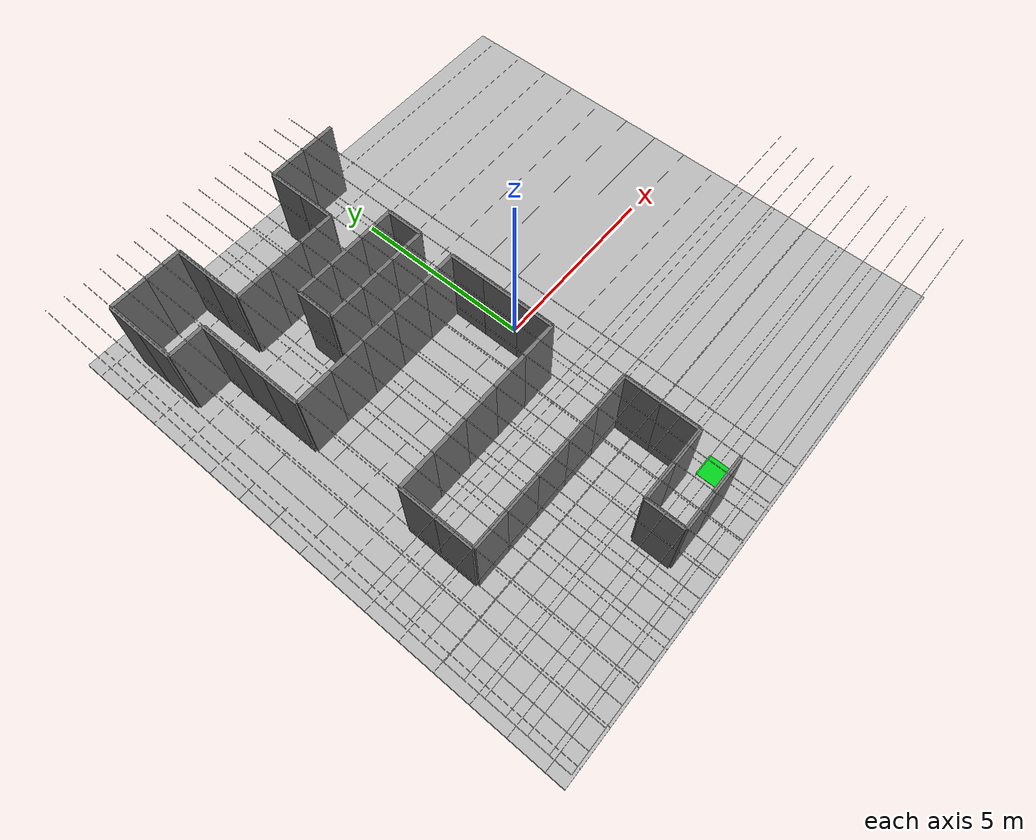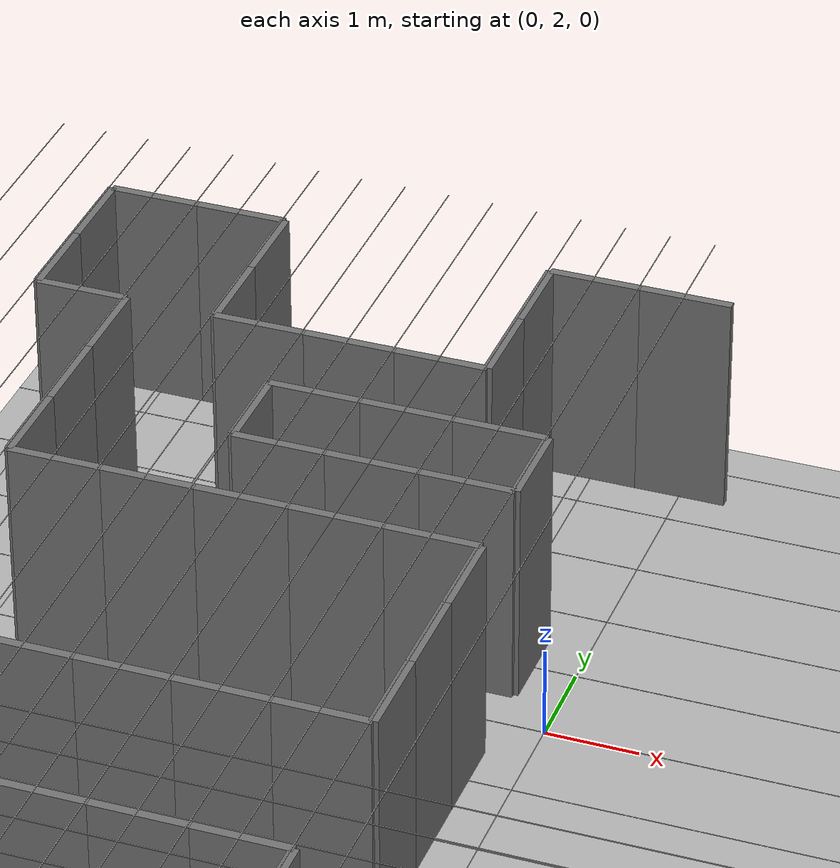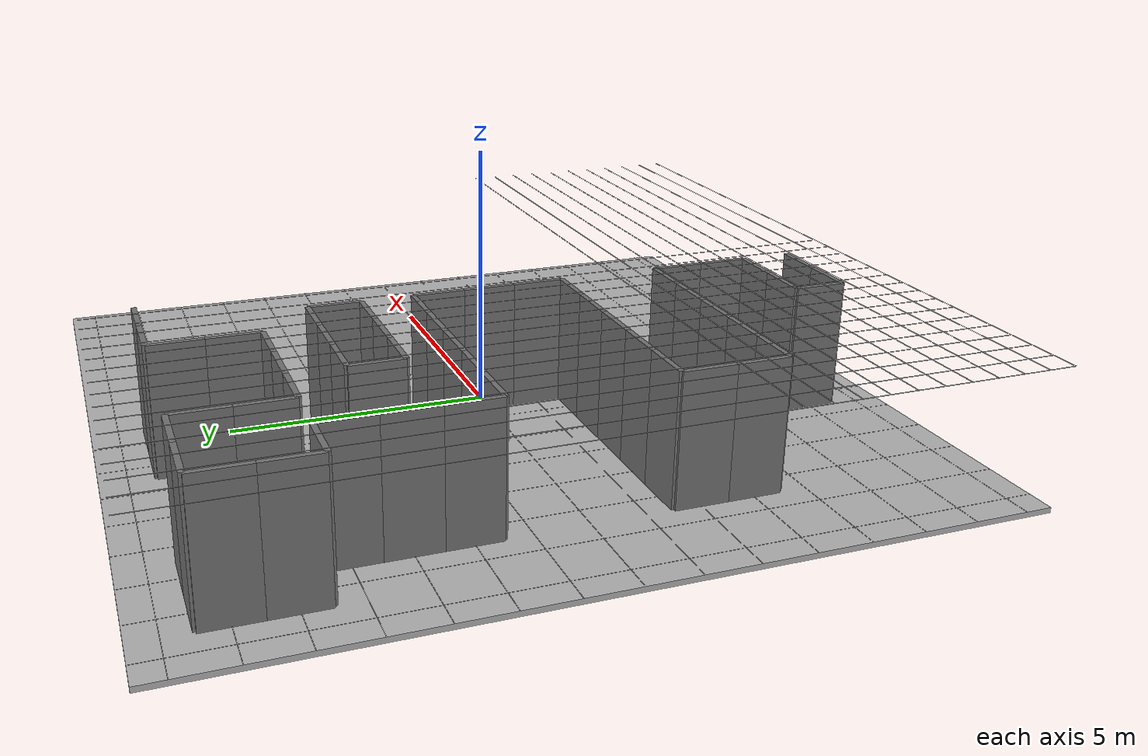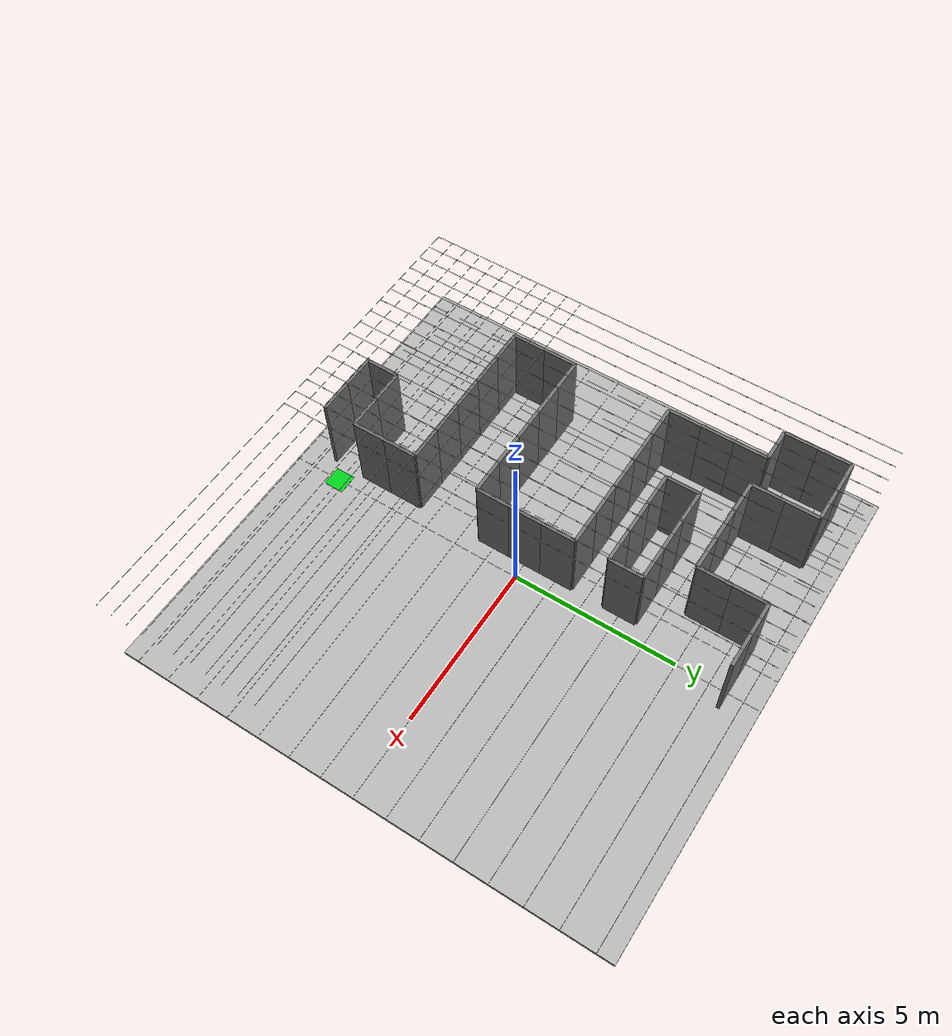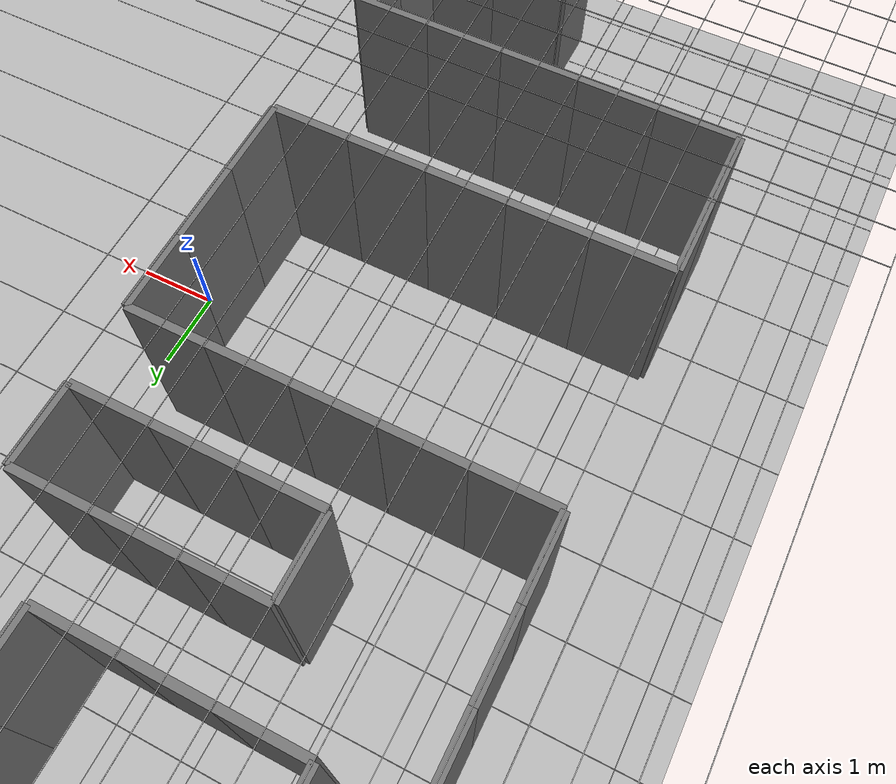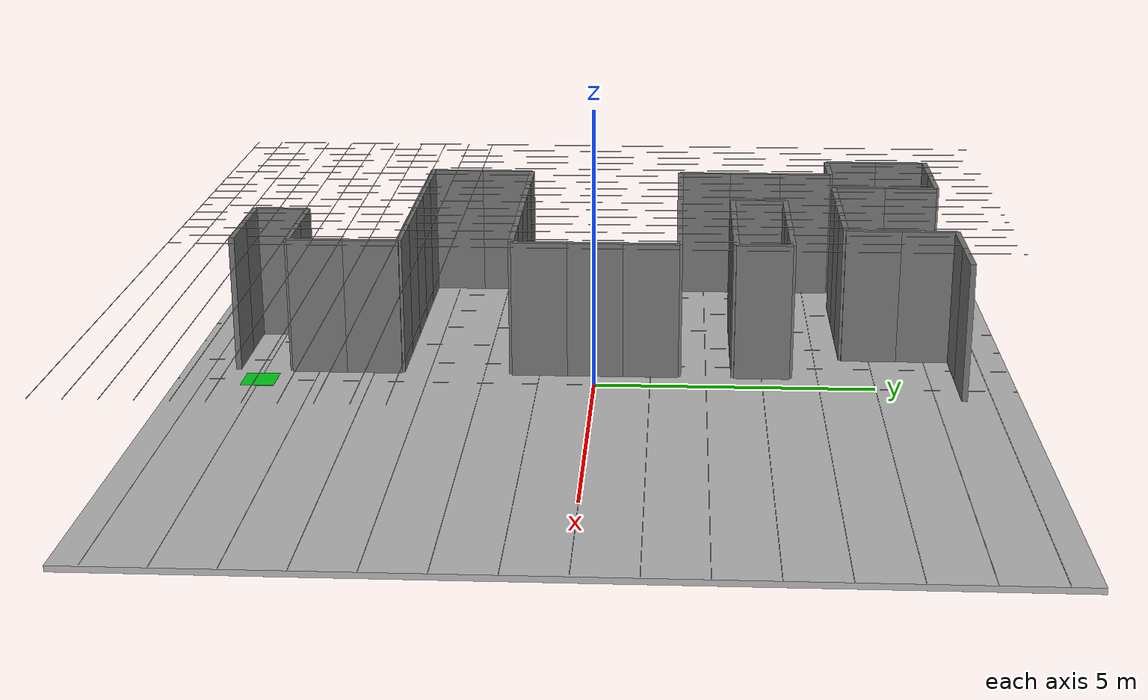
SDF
<sdf version="1.9">
 <world name="nidar_airmouse_building">
  <model name="floor">
   <static>true</static>
   <pose>0 0 -0.05 0 0 0</pose>
   <link name="link">
    <collision name="collision"><geometry><box><size>15 15 0.10</size></box></geometry></collision>
    <visual name="visual">
     <geometry><box><size>15 15 0.10</size></box></geometry>
     <material><ambient>0.65 0.65 0.65 1</ambient><diffuse>0.70 0.70 0.70 1</diffuse></material>
    </visual>
   </link>
  </model>
  <model name="grid_x_0">
   <static>true</static>
   <pose>-7 0 0.006 0 0 0</pose>
   <link name="link">
    <visual name="visual">
     <geometry><box><size>0.008 15 0.002</size></box></geometry>
     <material><ambient>0.25 0.25 0.25 0.35</ambient></material>
    </visual>
   </link>
  </model>
  <model name="grid_x_1">
   <static>true</static>
   <pose>-6 0 0.006 0 0 0</pose>
   <link name="link">
    <visual name="visual">
     <geometry><box><size>0.008 15 0.002</size></box></geometry>
     <material><ambient>0.25 0.25 0.25 0.35</ambient></material>
    </visual>
   </link>
  </model>
  <model name="grid_x_2">
   <static>true</static>
   <pose>-5 0 0.006 0 0 0</pose>
   <link name="link">
    <visual name="visual">
     <geometry><box><size>0.008 15 0.002</size></box></geometry>
     <material><ambient>0.25 0.25 0.25 0.35</ambient></material>
    </visual>
   </link>
  </model>
  <model name="grid_x_3">
   <static>true</static>
   <pose>-4 0 0.006 0 0 0</pose>
   <link name="link">
    <visual name="visual">
     <geometry><box><size>0.008 15 0.002</size></box></geometry>
     <material><ambient>0.25 0.25 0.25 0.35</ambient></material>
    </visual>
   </link>
  </model>
  <model name="grid_x_4">
   <static>true</static>
   <pose>-3 0 0.006 0 0 0</pose>
   <link name="link">
    <visual name="visual">
     <geometry><box><size>0.008 15 0.002</size></box></geometry>
     <material><ambient>0.25 0.25 0.25 0.35</ambient></material>
    </visual>
   </link>
  </model>
  <model name="grid_x_5">
   <static>true</static>
   <pose>-2 0 0.006 0 0 0</pose>
   <link name="link">
    <visual name="visual">
     <geometry><box><size>0.008 15 0.002</size></box></geometry>
     <material><ambient>0.25 0.25 0.25 0.35</ambient></material>
    </visual>
   </link>
  </model>
  <model name="grid_x_6">
   <static>true</static>
   <pose>-1 0 0.006 0 0 0</pose>
   <link name="link">
    <visual name="visual">
     <geometry><box><size>0.008 15 0.002</size></box></geometry>
     <material><ambient>0.25 0.25 0.25 0.35</ambient></material>
    </visual>
   </link>
  </model>
  <model name="grid_x_7">
   <static>true</static>
   <pose>0 0 0.006 0 0 0</pose>
   <link name="link">
    <visual name="visual">
     <geometry><box><size>0.008 15 0.002</size></box></geometry>
     <material><ambient>0.25 0.25 0.25 0.35</ambient></material>
    </visual>
   </link>
  </model>
  <model name="grid_y_15">
   <static>true</static>
   <pose>0 -7 0.007 0 0 0</pose>
   <link name="link">
    <visual name="visual">
     <geometry><box><size>15 0.008 0.002</size></box></geometry>
     <material><ambient>0.25 0.25 0.25 0.35</ambient></material>
    </visual>
   </link>
  </model>
  <model name="grid_y_16">
   <static>true</static>
   <pose>0 -6 0.007 0 0 0</pose>
   <link name="link">
    <visual name="visual">
     <geometry><box><size>15 0.008 0.002</size></box></geometry>
     <material><ambient>0.25 0.25 0.25 0.35</ambient></material>
    </visual>
   </link>
  </model>
  <model name="grid_y_17">
   <static>true</static>
   <pose>0 -5 0.007 0 0 0</pose>
   <link name="link">
    <visual name="visual">
     <geometry><box><size>15 0.008 0.002</size></box></geometry>
     <material><ambient>0.25 0.25 0.25 0.35</ambient></material>
    </visual>
   </link>
  </model>
  <model name="grid_y_18">
   <static>true</static>
   <pose>0 -4 0.007 0 0 0</pose>
   <link name="link">
    <visual name="visual">
     <geometry><box><size>15 0.008 0.002</size></box></geometry>
     <material><ambient>0.25 0.25 0.25 0.35</ambient></material>
    </visual>
   </link>
  </model>
  <model name="grid_y_19">
   <static>true</static>
   <pose>0 -3 0.007 0 0 0</pose>
   <link name="link">
    <visual name="visual">
     <geometry><box><size>15 0.008 0.002</size></box></geometry>
     <material><ambient>0.25 0.25 0.25 0.35</ambient></material>
    </visual>
   </link>
  </model>
  <model name="grid_y_20">
   <static>true</static>
   <pose>0 -2 0.007 0 0 0</pose>
   <link name="link">
    <visual name="visual">
     <geometry><box><size>15 0.008 0.002</size></box></geometry>
     <material><ambient>0.25 0.25 0.25 0.35</ambient></material>
    </visual>
   </link>
  </model>
  <model name="grid_y_21">
   <static>true</static>
   <pose>0 -1 0.007 0 0 0</pose>
   <link name="link">
    <visual name="visual">
     <geometry><box><size>15 0.008 0.002</size></box></geometry>
     <material><ambient>0.25 0.25 0.25 0.35</ambient></material>
    </visual>
   </link>
  </model>
  <model name="grid_y_22">
   <static>true</static>
   <pose>0 0 0.007 0 0 0</pose>
   <link name="link">
    <visual name="visual">
     <geometry><box><size>15 0.008 0.002</size></box></geometry>
     <material><ambient>0.25 0.25 0.25 0.35</ambient></material>
    </visual>
   </link>
  </model>
  <model name="grid_y_23">
   <static>true</static>
   <pose>0 1 0.007 0 0 0</pose>
   <link name="link">
    <visual name="visual">
     <geometry><box><size>15 0.008 0.002</size></box></geometry>
     <material><ambient>0.25 0.25 0.25 0.35</ambient></material>
    </visual>
   </link>
  </model>
  <model name="grid_y_24">
   <static>true</static>
   <pose>0 2 0.007 0 0 0</pose>
   <link name="link">
    <visual name="visual">
     <geometry><box><size>15 0.008 0.002</size></box></geometry>
     <material><ambient>0.25 0.25 0.25 0.35</ambient></material>
    </visual>
   </link>
  </model>
  <model name="grid_y_25">
   <static>true</static>
   <pose>0 3 0.007 0 0 0</pose>
   <link name="link">
    <visual name="visual">
     <geometry><box><size>15 0.008 0.002</size></box></geometry>
     <material><ambient>0.25 0.25 0.25 0.35</ambient></material>
    </visual>
   </link>
  </model>
  <model name="grid_y_26">
   <static>true</static>
   <pose>0 4 0.007 0 0 0</pose>
   <link name="link">
    <visual name="visual">
     <geometry><box><size>15 0.008 0.002</size></box></geometry>
     <material><ambient>0.25 0.25 0.25 0.35</ambient></material>
    </visual>
   </link>
  </model>
  <model name="grid_y_27">
   <static>true</static>
   <pose>0 5 0.007 0 0 0</pose>
   <link name="link">
    <visual name="visual">
     <geometry><box><size>15 0.008 0.002</size></box></geometry>
     <material><ambient>0.25 0.25 0.25 0.35</ambient></material>
    </visual>
   </link>
  </model>
  <model name="grid_y_28">
   <static>true</static>
   <pose>0 6 0.007 0 0 0</pose>
   <link name="link">
    <visual name="visual">
     <geometry><box><size>15 0.008 0.002</size></box></geometry>
     <material><ambient>0.25 0.25 0.25 0.35</ambient></material>
    </visual>
   </link>
  </model>
  <model name="grid_y_29">
   <static>true</static>
   <pose>0 7 0.007 0 0 0</pose>
   <link name="link">
    <visual name="visual">
     <geometry><box><size>15 0.008 0.002</size></box></geometry>
     <material><ambient>0.25 0.25 0.25 0.35</ambient></material>
    </visual>
   </link>
  </model>
  <model name="wall_0">
   <static>true</static>
   <pose>-6.0 6.5 1.25
            0 0 0</pose>
   <link name="link">
    <collision name="collision"><geometry><box><size>1.0 0.1 2.5</size></box></geometry></collision>
    <visual name="visual">
     <geometry><box><size>1.0 0.1 2.5</size></box></geometry>
     <material><ambient>0.35 0.35 0.35 1</ambient><diffuse>0.45 0.45 0.45 1</diffuse></material>
    </visual>
   </link>
  </model>
  <model name="wall_1">
   <static>true</static>
   <pose>-6.5 6.0 1.25
            0 0 0</pose>
   <link name="link">
    <collision name="collision"><geometry><box><size>0.1 1.0 2.5</size></box></geometry></collision>
    <visual name="visual">
     <geometry><box><size>0.1 1.0 2.5</size></box></geometry>
     <material><ambient>0.35 0.35 0.35 1</ambient><diffuse>0.45 0.45 0.45 1</diffuse></material>
    </visual>
   </link>
  </model>
  <model name="wall_2">
   <static>true</static>
   <pose>-5.0 6.5 1.25
            0 0 0</pose>
   <link name="link">
    <collision name="collision"><geometry><box><size>1.0 0.1 2.5</size></box></geometry></collision>
    <visual name="visual">
     <geometry><box><size>1.0 0.1 2.5</size></box></geometry>
     <material><ambient>0.35 0.35 0.35 1</ambient><diffuse>0.45 0.45 0.45 1</diffuse></material>
    </visual>
   </link>
  </model>
  <model name="wall_3">
   <static>true</static>
   <pose>-4.5 6.0 1.25
            0 0 0</pose>
   <link name="link">
    <collision name="collision"><geometry><box><size>0.1 1.0 2.5</size></box></geometry></collision>
    <visual name="visual">
     <geometry><box><size>0.1 1.0 2.5</size></box></geometry>
     <material><ambient>0.35 0.35 0.35 1</ambient><diffuse>0.45 0.45 0.45 1</diffuse></material>
    </visual>
   </link>
  </model>
  <model name="wall_4">
   <static>true</static>
   <pose>-1.0 6.5 1.25
            0 0 0</pose>
   <link name="link">
    <collision name="collision"><geometry><box><size>1.0 0.1 2.5</size></box></geometry></collision>
    <visual name="visual">
     <geometry><box><size>1.0 0.1 2.5</size></box></geometry>
     <material><ambient>0.35 0.35 0.35 1</ambient><diffuse>0.45 0.45 0.45 1</diffuse></material>
    </visual>
   </link>
  </model>
  <model name="wall_5">
   <static>true</static>
   <pose>-1.5 6.0 1.25
            0 0 0</pose>
   <link name="link">
    <collision name="collision"><geometry><box><size>0.1 1.0 2.5</size></box></geometry></collision>
    <visual name="visual">
     <geometry><box><size>0.1 1.0 2.5</size></box></geometry>
     <material><ambient>0.35 0.35 0.35 1</ambient><diffuse>0.45 0.45 0.45 1</diffuse></material>
    </visual>
   </link>
  </model>
  <model name="wall_6">
   <static>true</static>
   <pose>0.0 6.5 1.25
            0 0 0</pose>
   <link name="link">
    <collision name="collision"><geometry><box><size>1.0 0.1 2.5</size></box></geometry></collision>
    <visual name="visual">
     <geometry><box><size>1.0 0.1 2.5</size></box></geometry>
     <material><ambient>0.35 0.35 0.35 1</ambient><diffuse>0.45 0.45 0.45 1</diffuse></material>
    </visual>
   </link>
  </model>
  <model name="wall_12">
   <static>true</static>
   <pose>-6.0 4.5 1.25
            0 0 0</pose>
   <link name="link">
    <collision name="collision"><geometry><box><size>1.0 0.1 2.5</size></box></geometry></collision>
    <visual name="visual">
     <geometry><box><size>1.0 0.1 2.5</size></box></geometry>
     <material><ambient>0.35 0.35 0.35 1</ambient><diffuse>0.45 0.45 0.45 1</diffuse></material>
    </visual>
   </link>
  </model>
  <model name="wall_13">
   <static>true</static>
   <pose>-6.5 5.0 1.25
            0 0 0</pose>
   <link name="link">
    <collision name="collision"><geometry><box><size>0.1 1.0 2.5</size></box></geometry></collision>
    <visual name="visual">
     <geometry><box><size>0.1 1.0 2.5</size></box></geometry>
     <material><ambient>0.35 0.35 0.35 1</ambient><diffuse>0.45 0.45 0.45 1</diffuse></material>
    </visual>
   </link>
  </model>
  <model name="wall_14">
   <static>true</static>
   <pose>-4.5 5.0 1.25
            0 0 0</pose>
   <link name="link">
    <collision name="collision"><geometry><box><size>0.1 1.0 2.5</size></box></geometry></collision>
    <visual name="visual">
     <geometry><box><size>0.1 1.0 2.5</size></box></geometry>
     <material><ambient>0.35 0.35 0.35 1</ambient><diffuse>0.45 0.45 0.45 1</diffuse></material>
    </visual>
   </link>
  </model>
  <model name="wall_15">
   <static>true</static>
   <pose>-1.5 5.0 1.25
            0 0 0</pose>
   <link name="link">
    <collision name="collision"><geometry><box><size>0.1 1.0 2.5</size></box></geometry></collision>
    <visual name="visual">
     <geometry><box><size>0.1 1.0 2.5</size></box></geometry>
     <material><ambient>0.35 0.35 0.35 1</ambient><diffuse>0.45 0.45 0.45 1</diffuse></material>
    </visual>
   </link>
  </model>
  <model name="wall_19">
   <static>true</static>
   <pose>-5.5 4.0 1.25
            0 0 0</pose>
   <link name="link">
    <collision name="collision"><geometry><box><size>0.1 1.0 2.5</size></box></geometry></collision>
    <visual name="visual">
     <geometry><box><size>0.1 1.0 2.5</size></box></geometry>
     <material><ambient>0.35 0.35 0.35 1</ambient><diffuse>0.45 0.45 0.45 1</diffuse></material>
    </visual>
   </link>
  </model>
  <model name="wall_20">
   <static>true</static>
   <pose>-4.0 4.5 1.25
            0 0 0</pose>
   <link name="link">
    <collision name="collision"><geometry><box><size>1.0 0.1 2.5</size></box></geometry></collision>
    <visual name="visual">
     <geometry><box><size>1.0 0.1 2.5</size></box></geometry>
     <material><ambient>0.35 0.35 0.35 1</ambient><diffuse>0.45 0.45 0.45 1</diffuse></material>
    </visual>
   </link>
  </model>
  <model name="wall_21">
   <static>true</static>
   <pose>-3.0 4.5 1.25
            0 0 0</pose>
   <link name="link">
    <collision name="collision"><geometry><box><size>1.0 0.1 2.5</size></box></geometry></collision>
    <visual name="visual">
     <geometry><box><size>1.0 0.1 2.5</size></box></geometry>
     <material><ambient>0.35 0.35 0.35 1</ambient><diffuse>0.45 0.45 0.45 1</diffuse></material>
    </visual>
   </link>
  </model>
  <model name="wall_22">
   <static>true</static>
   <pose>-3.0 3.5 1.25
            0 0 0</pose>
   <link name="link">
    <collision name="collision"><geometry><box><size>1.0 0.1 2.5</size></box></geometry></collision>
    <visual name="visual">
     <geometry><box><size>1.0 0.1 2.5</size></box></geometry>
     <material><ambient>0.35 0.35 0.35 1</ambient><diffuse>0.45 0.45 0.45 1</diffuse></material>
    </visual>
   </link>
  </model>
  <model name="wall_23">
   <static>true</static>
   <pose>-2.0 4.5 1.25
            0 0 0</pose>
   <link name="link">
    <collision name="collision"><geometry><box><size>1.0 0.1 2.5</size></box></geometry></collision>
    <visual name="visual">
     <geometry><box><size>1.0 0.1 2.5</size></box></geometry>
     <material><ambient>0.35 0.35 0.35 1</ambient><diffuse>0.45 0.45 0.45 1</diffuse></material>
    </visual>
   </link>
  </model>
  <model name="wall_24">
   <static>true</static>
   <pose>-2.0 3.5 1.25
            0 0 0</pose>
   <link name="link">
    <collision name="collision"><geometry><box><size>1.0 0.1 2.5</size></box></geometry></collision>
    <visual name="visual">
     <geometry><box><size>1.0 0.1 2.5</size></box></geometry>
     <material><ambient>0.35 0.35 0.35 1</ambient><diffuse>0.45 0.45 0.45 1</diffuse></material>
    </visual>
   </link>
  </model>
  <model name="wall_25">
   <static>true</static>
   <pose>-1.0 3.5 1.25
            0 0 0</pose>
   <link name="link">
    <collision name="collision"><geometry><box><size>1.0 0.1 2.5</size></box></geometry></collision>
    <visual name="visual">
     <geometry><box><size>1.0 0.1 2.5</size></box></geometry>
     <material><ambient>0.35 0.35 0.35 1</ambient><diffuse>0.45 0.45 0.45 1</diffuse></material>
    </visual>
   </link>
  </model>
  <model name="wall_33">
   <static>true</static>
   <pose>-5.5 3.0 1.25
            0 0 0</pose>
   <link name="link">
    <collision name="collision"><geometry><box><size>0.1 1.0 2.5</size></box></geometry></collision>
    <visual name="visual">
     <geometry><box><size>0.1 1.0 2.5</size></box></geometry>
     <material><ambient>0.35 0.35 0.35 1</ambient><diffuse>0.45 0.45 0.45 1</diffuse></material>
    </visual>
   </link>
  </model>
  <model name="wall_34">
   <static>true</static>
   <pose>-3.5 3.0 1.25
            0 0 0</pose>
   <link name="link">
    <collision name="collision"><geometry><box><size>0.1 1.0 2.5</size></box></geometry></collision>
    <visual name="visual">
     <geometry><box><size>0.1 1.0 2.5</size></box></geometry>
     <material><ambient>0.35 0.35 0.35 1</ambient><diffuse>0.45 0.45 0.45 1</diffuse></material>
    </visual>
   </link>
  </model>
  <model name="wall_35">
   <static>true</static>
   <pose>-0.5 3.0 1.25
            0 0 0</pose>
   <link name="link">
    <collision name="collision"><geometry><box><size>0.1 1.0 2.5</size></box></geometry></collision>
    <visual name="visual">
     <geometry><box><size>0.1 1.0 2.5</size></box></geometry>
     <material><ambient>0.35 0.35 0.35 1</ambient><diffuse>0.45 0.45 0.45 1</diffuse></material>
    </visual>
   </link>
  </model>
  <model name="wall_39">
   <static>true</static>
   <pose>-5.0 1.5 1.25
            0 0 0</pose>
   <link name="link">
    <collision name="collision"><geometry><box><size>1.0 0.1 2.5</size></box></geometry></collision>
    <visual name="visual">
     <geometry><box><size>1.0 0.1 2.5</size></box></geometry>
     <material><ambient>0.35 0.35 0.35 1</ambient><diffuse>0.45 0.45 0.45 1</diffuse></material>
    </visual>
   </link>
  </model>
  <model name="wall_40">
   <static>true</static>
   <pose>-5.5 2.0 1.25
            0 0 0</pose>
   <link name="link">
    <collision name="collision"><geometry><box><size>0.1 1.0 2.5</size></box></geometry></collision>
    <visual name="visual">
     <geometry><box><size>0.1 1.0 2.5</size></box></geometry>
     <material><ambient>0.35 0.35 0.35 1</ambient><diffuse>0.45 0.45 0.45 1</diffuse></material>
    </visual>
   </link>
  </model>
  <model name="wall_41">
   <static>true</static>
   <pose>-4.0 1.5 1.25
            0 0 0</pose>
   <link name="link">
    <collision name="collision"><geometry><box><size>1.0 0.1 2.5</size></box></geometry></collision>
    <visual name="visual">
     <geometry><box><size>1.0 0.1 2.5</size></box></geometry>
     <material><ambient>0.35 0.35 0.35 1</ambient><diffuse>0.45 0.45 0.45 1</diffuse></material>
    </visual>
   </link>
  </model>
  <model name="wall_42">
   <static>true</static>
   <pose>-3.0 2.5 1.25
            0 0 0</pose>
   <link name="link">
    <collision name="collision"><geometry><box><size>1.0 0.1 2.5</size></box></geometry></collision>
    <visual name="visual">
     <geometry><box><size>1.0 0.1 2.5</size></box></geometry>
     <material><ambient>0.35 0.35 0.35 1</ambient><diffuse>0.45 0.45 0.45 1</diffuse></material>
    </visual>
   </link>
  </model>
  <model name="wall_43">
   <static>true</static>
   <pose>-3.0 1.5 1.25
            0 0 0</pose>
   <link name="link">
    <collision name="collision"><geometry><box><size>1.0 0.1 2.5</size></box></geometry></collision>
    <visual name="visual">
     <geometry><box><size>1.0 0.1 2.5</size></box></geometry>
     <material><ambient>0.35 0.35 0.35 1</ambient><diffuse>0.45 0.45 0.45 1</diffuse></material>
    </visual>
   </link>
  </model>
  <model name="wall_44">
   <static>true</static>
   <pose>-2.0 2.5 1.25
            0 0 0</pose>
   <link name="link">
    <collision name="collision"><geometry><box><size>1.0 0.1 2.5</size></box></geometry></collision>
    <visual name="visual">
     <geometry><box><size>1.0 0.1 2.5</size></box></geometry>
     <material><ambient>0.35 0.35 0.35 1</ambient><diffuse>0.45 0.45 0.45 1</diffuse></material>
    </visual>
   </link>
  </model>
  <model name="wall_45">
   <static>true</static>
   <pose>-2.0 1.5 1.25
            0 0 0</pose>
   <link name="link">
    <collision name="collision"><geometry><box><size>1.0 0.1 2.5</size></box></geometry></collision>
    <visual name="visual">
     <geometry><box><size>1.0 0.1 2.5</size></box></geometry>
     <material><ambient>0.35 0.35 0.35 1</ambient><diffuse>0.45 0.45 0.45 1</diffuse></material>
    </visual>
   </link>
  </model>
  <model name="wall_46">
   <static>true</static>
   <pose>-1.0 2.5 1.25
            0 0 0</pose>
   <link name="link">
    <collision name="collision"><geometry><box><size>1.0 0.1 2.5</size></box></geometry></collision>
    <visual name="visual">
     <geometry><box><size>1.0 0.1 2.5</size></box></geometry>
     <material><ambient>0.35 0.35 0.35 1</ambient><diffuse>0.45 0.45 0.45 1</diffuse></material>
    </visual>
   </link>
  </model>
  <model name="wall_47">
   <static>true</static>
   <pose>-1.0 1.5 1.25
            0 0 0</pose>
   <link name="link">
    <collision name="collision"><geometry><box><size>1.0 0.1 2.5</size></box></geometry></collision>
    <visual name="visual">
     <geometry><box><size>1.0 0.1 2.5</size></box></geometry>
     <material><ambient>0.35 0.35 0.35 1</ambient><diffuse>0.45 0.45 0.45 1</diffuse></material>
    </visual>
   </link>
  </model>
  <model name="wall_55">
   <static>true</static>
   <pose>-0.5 1.0 1.25
            0 0 0</pose>
   <link name="link">
    <collision name="collision"><geometry><box><size>0.1 1.0 2.5</size></box></geometry></collision>
    <visual name="visual">
     <geometry><box><size>0.1 1.0 2.5</size></box></geometry>
     <material><ambient>0.35 0.35 0.35 1</ambient><diffuse>0.45 0.45 0.45 1</diffuse></material>
    </visual>
   </link>
  </model>
  <model name="wall_59">
   <static>true</static>
   <pose>-0.5 0.0 1.25
            0 0 0</pose>
   <link name="link">
    <collision name="collision"><geometry><box><size>0.1 1.0 2.5</size></box></geometry></collision>
    <visual name="visual">
     <geometry><box><size>0.1 1.0 2.5</size></box></geometry>
     <material><ambient>0.35 0.35 0.35 1</ambient><diffuse>0.45 0.45 0.45 1</diffuse></material>
    </visual>
   </link>
  </model>
  <model name="wall_63">
   <static>true</static>
   <pose>-0.5 -1.0 1.25
            0 0 0</pose>
   <link name="link">
    <collision name="collision"><geometry><box><size>0.1 1.0 2.5</size></box></geometry></collision>
    <visual name="visual">
     <geometry><box><size>0.1 1.0 2.5</size></box></geometry>
     <material><ambient>0.35 0.35 0.35 1</ambient><diffuse>0.45 0.45 0.45 1</diffuse></material>
    </visual>
   </link>
  </model>
  <model name="wall_71">
   <static>true</static>
   <pose>-5.0 -1.5 1.25
            0 0 0</pose>
   <link name="link">
    <collision name="collision"><geometry><box><size>1.0 0.1 2.5</size></box></geometry></collision>
    <visual name="visual">
     <geometry><box><size>1.0 0.1 2.5</size></box></geometry>
     <material><ambient>0.35 0.35 0.35 1</ambient><diffuse>0.45 0.45 0.45 1</diffuse></material>
    </visual>
   </link>
  </model>
  <model name="wall_72">
   <static>true</static>
   <pose>-5.5 -2.0 1.25
            0 0 0</pose>
   <link name="link">
    <collision name="collision"><geometry><box><size>0.1 1.0 2.5</size></box></geometry></collision>
    <visual name="visual">
     <geometry><box><size>0.1 1.0 2.5</size></box></geometry>
     <material><ambient>0.35 0.35 0.35 1</ambient><diffuse>0.45 0.45 0.45 1</diffuse></material>
    </visual>
   </link>
  </model>
  <model name="wall_73">
   <static>true</static>
   <pose>-4.0 -1.5 1.25
            0 0 0</pose>
   <link name="link">
    <collision name="collision"><geometry><box><size>1.0 0.1 2.5</size></box></geometry></collision>
    <visual name="visual">
     <geometry><box><size>1.0 0.1 2.5</size></box></geometry>
     <material><ambient>0.35 0.35 0.35 1</ambient><diffuse>0.45 0.45 0.45 1</diffuse></material>
    </visual>
   </link>
  </model>
  <model name="wall_74">
   <static>true</static>
   <pose>-3.0 -1.5 1.25
            0 0 0</pose>
   <link name="link">
    <collision name="collision"><geometry><box><size>1.0 0.1 2.5</size></box></geometry></collision>
    <visual name="visual">
     <geometry><box><size>1.0 0.1 2.5</size></box></geometry>
     <material><ambient>0.35 0.35 0.35 1</ambient><diffuse>0.45 0.45 0.45 1</diffuse></material>
    </visual>
   </link>
  </model>
  <model name="wall_75">
   <static>true</static>
   <pose>-2.0 -1.5 1.25
            0 0 0</pose>
   <link name="link">
    <collision name="collision"><geometry><box><size>1.0 0.1 2.5</size></box></geometry></collision>
    <visual name="visual">
     <geometry><box><size>1.0 0.1 2.5</size></box></geometry>
     <material><ambient>0.35 0.35 0.35 1</ambient><diffuse>0.45 0.45 0.45 1</diffuse></material>
    </visual>
   </link>
  </model>
  <model name="wall_76">
   <static>true</static>
   <pose>-1.0 -1.5 1.25
            0 0 0</pose>
   <link name="link">
    <collision name="collision"><geometry><box><size>1.0 0.1 2.5</size></box></geometry></collision>
    <visual name="visual">
     <geometry><box><size>1.0 0.1 2.5</size></box></geometry>
     <material><ambient>0.35 0.35 0.35 1</ambient><diffuse>0.45 0.45 0.45 1</diffuse></material>
    </visual>
   </link>
  </model>
  <model name="wall_80">
   <static>true</static>
   <pose>-5.0 -3.5 1.25
            0 0 0</pose>
   <link name="link">
    <collision name="collision"><geometry><box><size>1.0 0.1 2.5</size></box></geometry></collision>
    <visual name="visual">
     <geometry><box><size>1.0 0.1 2.5</size></box></geometry>
     <material><ambient>0.35 0.35 0.35 1</ambient><diffuse>0.45 0.45 0.45 1</diffuse></material>
    </visual>
   </link>
  </model>
  <model name="wall_81">
   <static>true</static>
   <pose>-5.5 -3.0 1.25
            0 0 0</pose>
   <link name="link">
    <collision name="collision"><geometry><box><size>0.1 1.0 2.5</size></box></geometry></collision>
    <visual name="visual">
     <geometry><box><size>0.1 1.0 2.5</size></box></geometry>
     <material><ambient>0.35 0.35 0.35 1</ambient><diffuse>0.45 0.45 0.45 1</diffuse></material>
    </visual>
   </link>
  </model>
  <model name="wall_82">
   <static>true</static>
   <pose>-4.0 -3.5 1.25
            0 0 0</pose>
   <link name="link">
    <collision name="collision"><geometry><box><size>1.0 0.1 2.5</size></box></geometry></collision>
    <visual name="visual">
     <geometry><box><size>1.0 0.1 2.5</size></box></geometry>
     <material><ambient>0.35 0.35 0.35 1</ambient><diffuse>0.45 0.45 0.45 1</diffuse></material>
    </visual>
   </link>
  </model>
  <model name="wall_83">
   <static>true</static>
   <pose>-3.0 -3.5 1.25
            0 0 0</pose>
   <link name="link">
    <collision name="collision"><geometry><box><size>1.0 0.1 2.5</size></box></geometry></collision>
    <visual name="visual">
     <geometry><box><size>1.0 0.1 2.5</size></box></geometry>
     <material><ambient>0.35 0.35 0.35 1</ambient><diffuse>0.45 0.45 0.45 1</diffuse></material>
    </visual>
   </link>
  </model>
  <model name="wall_84">
   <static>true</static>
   <pose>-2.0 -3.5 1.25
            0 0 0</pose>
   <link name="link">
    <collision name="collision"><geometry><box><size>1.0 0.1 2.5</size></box></geometry></collision>
    <visual name="visual">
     <geometry><box><size>1.0 0.1 2.5</size></box></geometry>
     <material><ambient>0.35 0.35 0.35 1</ambient><diffuse>0.45 0.45 0.45 1</diffuse></material>
    </visual>
   </link>
  </model>
  <model name="wall_85">
   <static>true</static>
   <pose>-1.0 -3.5 1.25
            0 0 0</pose>
   <link name="link">
    <collision name="collision"><geometry><box><size>1.0 0.1 2.5</size></box></geometry></collision>
    <visual name="visual">
     <geometry><box><size>1.0 0.1 2.5</size></box></geometry>
     <material><ambient>0.35 0.35 0.35 1</ambient><diffuse>0.45 0.45 0.45 1</diffuse></material>
    </visual>
   </link>
  </model>
  <model name="wall_92">
   <static>true</static>
   <pose>-0.5 -4.0 1.25
            0 0 0</pose>
   <link name="link">
    <collision name="collision"><geometry><box><size>0.1 1.0 2.5</size></box></geometry></collision>
    <visual name="visual">
     <geometry><box><size>0.1 1.0 2.5</size></box></geometry>
     <material><ambient>0.35 0.35 0.35 1</ambient><diffuse>0.45 0.45 0.45 1</diffuse></material>
    </visual>
   </link>
  </model>
  <model name="wall_99">
   <static>true</static>
   <pose>-0.5 -5.0 1.25
            0 0 0</pose>
   <link name="link">
    <collision name="collision"><geometry><box><size>0.1 1.0 2.5</size></box></geometry></collision>
    <visual name="visual">
     <geometry><box><size>0.1 1.0 2.5</size></box></geometry>
     <material><ambient>0.35 0.35 0.35 1</ambient><diffuse>0.45 0.45 0.45 1</diffuse></material>
    </visual>
   </link>
  </model>
  <model name="wall_101">
   <static>true</static>
   <pose>-2.0 -5.5 1.25
            0 0 0</pose>
   <link name="link">
    <collision name="collision"><geometry><box><size>1.0 0.1 2.5</size></box></geometry></collision>
    <visual name="visual">
     <geometry><box><size>1.0 0.1 2.5</size></box></geometry>
     <material><ambient>0.35 0.35 0.35 1</ambient><diffuse>0.45 0.45 0.45 1</diffuse></material>
    </visual>
   </link>
  </model>
  <model name="wall_102">
   <static>true</static>
   <pose>-2.0 -6.5 1.25
            0 0 0</pose>
   <link name="link">
    <collision name="collision"><geometry><box><size>1.0 0.1 2.5</size></box></geometry></collision>
    <visual name="visual">
     <geometry><box><size>1.0 0.1 2.5</size></box></geometry>
     <material><ambient>0.35 0.35 0.35 1</ambient><diffuse>0.45 0.45 0.45 1</diffuse></material>
    </visual>
   </link>
  </model>
  <model name="wall_103">
   <static>true</static>
   <pose>-2.5 -6.0 1.25
            0 0 0</pose>
   <link name="link">
    <collision name="collision"><geometry><box><size>0.1 1.0 2.5</size></box></geometry></collision>
    <visual name="visual">
     <geometry><box><size>0.1 1.0 2.5</size></box></geometry>
     <material><ambient>0.35 0.35 0.35 1</ambient><diffuse>0.45 0.45 0.45 1</diffuse></material>
    </visual>
   </link>
  </model>
  <model name="wall_104">
   <static>true</static>
   <pose>-1.0 -5.5 1.25
            0 0 0</pose>
   <link name="link">
    <collision name="collision"><geometry><box><size>1.0 0.1 2.5</size></box></geometry></collision>
    <visual name="visual">
     <geometry><box><size>1.0 0.1 2.5</size></box></geometry>
     <material><ambient>0.35 0.35 0.35 1</ambient><diffuse>0.45 0.45 0.45 1</diffuse></material>
    </visual>
   </link>
  </model>
  <model name="wall_105">
   <static>true</static>
   <pose>-1.0 -6.5 1.25
            0 0 0</pose>
   <link name="link">
    <collision name="collision"><geometry><box><size>1.0 0.1 2.5</size></box></geometry></collision>
    <visual name="visual">
     <geometry><box><size>1.0 0.1 2.5</size></box></geometry>
     <material><ambient>0.35 0.35 0.35 1</ambient><diffuse>0.45 0.45 0.45 1</diffuse></material>
    </visual>
   </link>
  </model>
  <model name="entry_exit">
   <static>true</static>
   <pose>0.0 -6.0 0.01
            0 0 0</pose>
   <link name="link">
    <visual name="visual">
     <geometry><box><size>0.60 0.60 0.01</size></box></geometry>
     <material><ambient>0.0 0.8 0.1 1</ambient><diffuse>0.0 0.8 0.1 1</diffuse></material>
    </visual>
   </link>
  </model>
  <model name="net_x_0">
   <static>true</static>
   <pose>-7.5 0 2.55
                0 0 0</pose>
   <link name="link">
    <visual name="visual"><geometry><box><size>0.008 15 0.008</size></box></geometry></visual>
   </link>
  </model>
  <model name="net_x_1">
   <static>true</static>
   <pose>-7.0 0 2.55
                0 0 0</pose>
   <link name="link">
    <visual name="visual"><geometry><box><size>0.008 15 0.008</size></box></geometry></visual>
   </link>
  </model>
  <model name="net_x_2">
   <static>true</static>
   <pose>-6.5 0 2.55
                0 0 0</pose>
   <link name="link">
    <visual name="visual"><geometry><box><size>0.008 15 0.008</size></box></geometry></visual>
   </link>
  </model>
  <model name="net_x_3">
   <static>true</static>
   <pose>-6.0 0 2.55
                0 0 0</pose>
   <link name="link">
    <visual name="visual"><geometry><box><size>0.008 15 0.008</size></box></geometry></visual>
   </link>
  </model>
  <model name="net_x_4">
   <static>true</static>
   <pose>-5.5 0 2.55
                0 0 0</pose>
   <link name="link">
    <visual name="visual"><geometry><box><size>0.008 15 0.008</size></box></geometry></visual>
   </link>
  </model>
  <model name="net_x_5">
   <static>true</static>
   <pose>-5.0 0 2.55
                0 0 0</pose>
   <link name="link">
    <visual name="visual"><geometry><box><size>0.008 15 0.008</size></box></geometry></visual>
   </link>
  </model>
  <model name="net_x_6">
   <static>true</static>
   <pose>-4.5 0 2.55
                0 0 0</pose>
   <link name="link">
    <visual name="visual"><geometry><box><size>0.008 15 0.008</size></box></geometry></visual>
   </link>
  </model>
  <model name="net_x_7">
   <static>true</static>
   <pose>-4.0 0 2.55
                0 0 0</pose>
   <link name="link">
    <visual name="visual"><geometry><box><size>0.008 15 0.008</size></box></geometry></visual>
   </link>
  </model>
  <model name="net_x_8">
   <static>true</static>
   <pose>-3.5 0 2.55
                0 0 0</pose>
   <link name="link">
    <visual name="visual"><geometry><box><size>0.008 15 0.008</size></box></geometry></visual>
   </link>
  </model>
  <model name="net_x_9">
   <static>true</static>
   <pose>-3.0 0 2.55
                0 0 0</pose>
   <link name="link">
    <visual name="visual"><geometry><box><size>0.008 15 0.008</size></box></geometry></visual>
   </link>
  </model>
  <model name="net_x_10">
   <static>true</static>
   <pose>-2.5 0 2.55
                0 0 0</pose>
   <link name="link">
    <visual name="visual"><geometry><box><size>0.008 15 0.008</size></box></geometry></visual>
   </link>
  </model>
  <model name="net_x_11">
   <static>true</static>
   <pose>-2.0 0 2.55
                0 0 0</pose>
   <link name="link">
    <visual name="visual"><geometry><box><size>0.008 15 0.008</size></box></geometry></visual>
   </link>
  </model>
  <model name="net_x_12">
   <static>true</static>
   <pose>-1.5 0 2.55
                0 0 0</pose>
   <link name="link">
    <visual name="visual"><geometry><box><size>0.008 15 0.008</size></box></geometry></visual>
   </link>
  </model>
  <model name="net_x_13">
   <static>true</static>
   <pose>-1.0 0 2.55
                0 0 0</pose>
   <link name="link">
    <visual name="visual"><geometry><box><size>0.008 15 0.008</size></box></geometry></visual>
   </link>
  </model>
  <model name="net_x_14">
   <static>true</static>
   <pose>-0.5 0 2.55
                0 0 0</pose>
   <link name="link">
    <visual name="visual"><geometry><box><size>0.008 15 0.008</size></box></geometry></visual>
   </link>
  </model>
  <model name="net_x_15">
   <static>true</static>
   <pose>0.0 0 2.55
                0 0 0</pose>
   <link name="link">
    <visual name="visual"><geometry><box><size>0.008 15 0.008</size></box></geometry></visual>
   </link>
  </model>
  <model name="net_y_31">
   <static>true</static>
   <pose>0 -7.5 2.55
                0 0 0</pose>
   <link name="link">
    <visual name="visual"><geometry><box><size>15 0.008 0.008</size></box></geometry></visual>
   </link>
  </model>
  <model name="net_y_32">
   <static>true</static>
   <pose>0 -7.0 2.55
                0 0 0</pose>
   <link name="link">
    <visual name="visual"><geometry><box><size>15 0.008 0.008</size></box></geometry></visual>
   </link>
  </model>
  <model name="net_y_33">
   <static>true</static>
   <pose>0 -6.5 2.55
                0 0 0</pose>
   <link name="link">
    <visual name="visual"><geometry><box><size>15 0.008 0.008</size></box></geometry></visual>
   </link>
  </model>
  <model name="net_y_34">
   <static>true</static>
   <pose>0 -6.0 2.55
                0 0 0</pose>
   <link name="link">
    <visual name="visual"><geometry><box><size>15 0.008 0.008</size></box></geometry></visual>
   </link>
  </model>
  <model name="net_y_35">
   <static>true</static>
   <pose>0 -5.5 2.55
                0 0 0</pose>
   <link name="link">
    <visual name="visual"><geometry><box><size>15 0.008 0.008</size></box></geometry></visual>
   </link>
  </model>
  <model name="net_y_36">
   <static>true</static>
   <pose>0 -5.0 2.55
                0 0 0</pose>
   <link name="link">
    <visual name="visual"><geometry><box><size>15 0.008 0.008</size></box></geometry></visual>
   </link>
  </model>
  <model name="net_y_37">
   <static>true</static>
   <pose>0 -4.5 2.55
                0 0 0</pose>
   <link name="link">
    <visual name="visual"><geometry><box><size>15 0.008 0.008</size></box></geometry></visual>
   </link>
  </model>
  <model name="net_y_38">
   <static>true</static>
   <pose>0 -4.0 2.55
                0 0 0</pose>
   <link name="link">
    <visual name="visual"><geometry><box><size>15 0.008 0.008</size></box></geometry></visual>
   </link>
  </model>
  <model name="net_y_39">
   <static>true</static>
   <pose>0 -3.5 2.55
                0 0 0</pose>
   <link name="link">
    <visual name="visual"><geometry><box><size>15 0.008 0.008</size></box></geometry></visual>
   </link>
  </model>
  <model name="net_y_40">
   <static>true</static>
   <pose>0 -3.0 2.55
                0 0 0</pose>
   <link name="link">
    <visual name="visual"><geometry><box><size>15 0.008 0.008</size></box></geometry></visual>
   </link>
  </model>
  <model name="net_y_41">
   <static>true</static>
   <pose>0 -2.5 2.55
                0 0 0</pose>
   <link name="link">
    <visual name="visual"><geometry><box><size>15 0.008 0.008</size></box></geometry></visual>
   </link>
  </model>
 </world>
</sdf>
